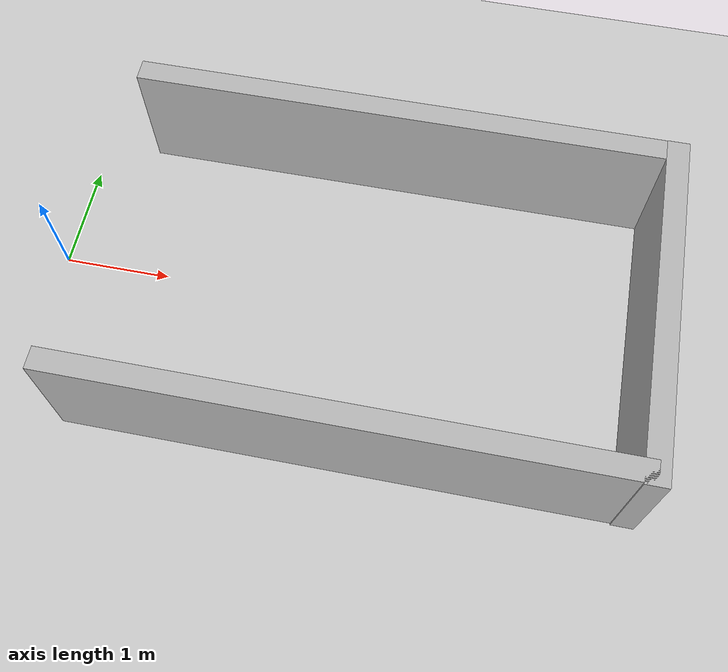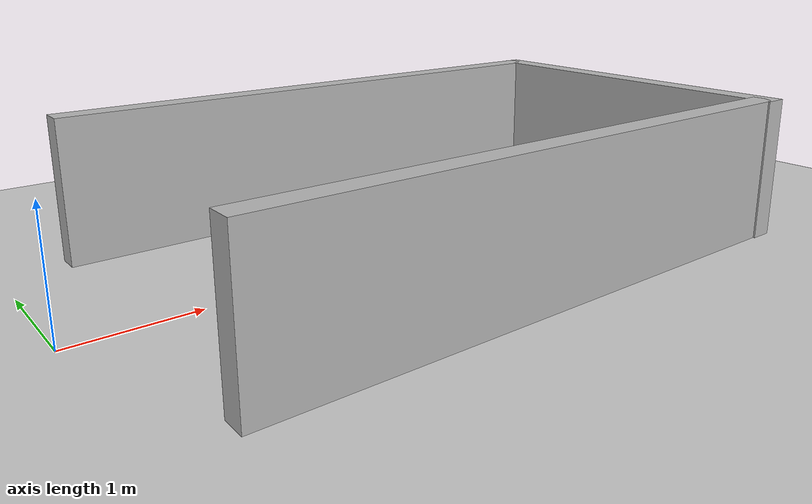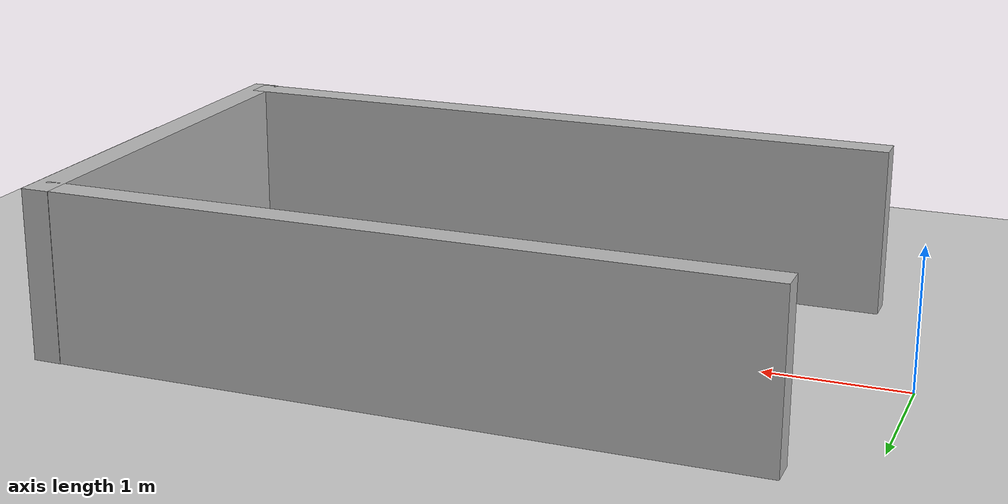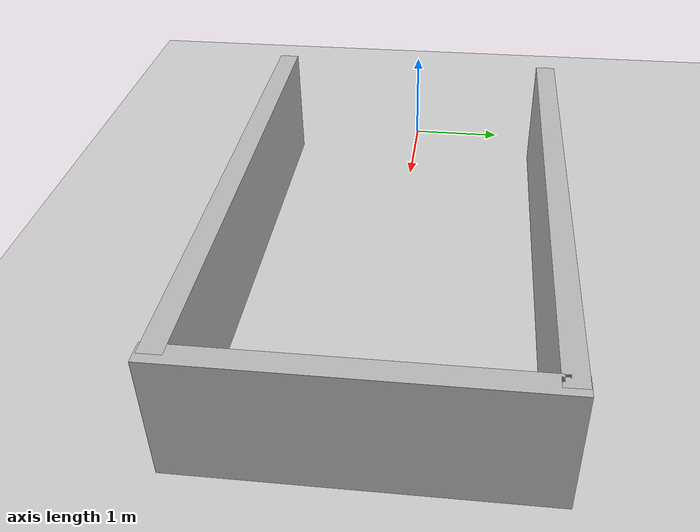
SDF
<?xml version="1.0"?>
<sdf version="1.6">
  <world name="v2-04g-r4-maneuver-s5073">
    <gravity>0 0 -9.81</gravity>
    <physics name="v2_deterministic" type="ode">
      <max_step_size>0.002</max_step_size>
      <real_time_update_rate>500</real_time_update_rate>
    </physics>
    <include>
      <uri>model://sun</uri>
    </include>
    <include>
      <uri>model://ground_plane</uri>
    </include>
    <model name="bay-left">
      <static>true</static>
      <pose>3.008274235 1.495518543 0.600000000 0 0 0.002740886</pose>
      <link name="link">
        <collision name="collision">
          <geometry>
            <box>
              <size>5.000000 0.200000 1.200000</size>
            </box>
          </geometry>
        </collision>
        <visual name="visual">
          <geometry>
            <box>
              <size>5.000000 0.200000 1.200000</size>
            </box>
          </geometry>
        </visual>
      </link>
    </model>
    <model name="bay-right">
      <static>true</static>
      <pose>2.984842733 -1.484681794 0.600000000 0 0 0.001548888</pose>
      <link name="link">
        <collision name="collision">
          <geometry>
            <box>
              <size>5.000000 0.200000 1.200000</size>
            </box>
          </geometry>
        </collision>
        <visual name="visual">
          <geometry>
            <box>
              <size>5.000000 0.200000 1.200000</size>
            </box>
          </geometry>
        </visual>
      </link>
    </model>
    <model name="bay-back">
      <static>true</static>
      <pose>5.475992327 0.005109048 0.600000000 0 0 -0.001803119</pose>
      <link name="link">
        <collision name="collision">
          <geometry>
            <box>
              <size>0.200000 3.200000 1.200000</size>
            </box>
          </geometry>
        </collision>
        <visual name="visual">
          <geometry>
            <box>
              <size>0.200000 3.200000 1.200000</size>
            </box>
          </geometry>
        </visual>
      </link>
    </model>
  </world>
</sdf>
